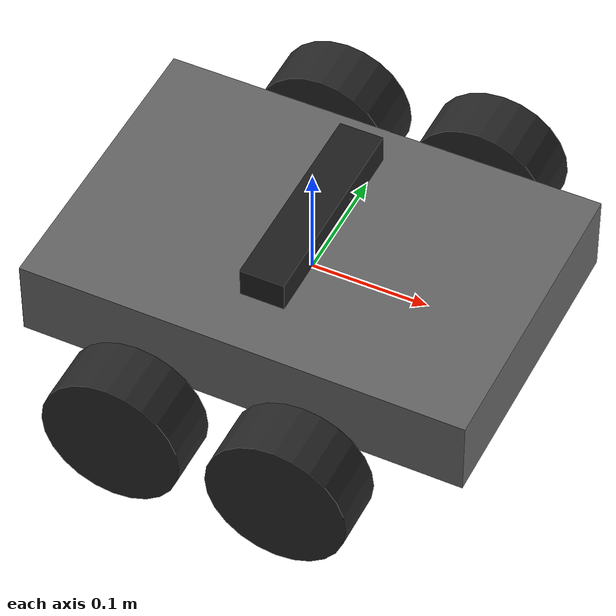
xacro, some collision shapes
<?xml version="1.0"?>
<robot name="kabuto" xmlns:xacro="http://www.ros.org/wiki/xacro">

  <xacro:include filename="$(find hotwheels_description)/urdf/xtion_camera.xacro" />
  <xacro:include filename="$(find hotwheels_description)/gazebo/gazebo.urdf.xacro"/>
  <xacro:property name="PI" value="3.1415926535897931" />
  <xacro:property name="wheelbase" value="0.142" />
  <xacro:property name="track" value="0.37559" /> <!-- TODO FIX track value -->
  <xacro:property name="wheel_vertical_offset" value="-0.03" />
  <xacro:property name="wheel_radius" value="0.06" />
  <xacro:property name="wheel_lenght" value="0.05" />

  <material name="dark_grey"><color rgba="0.2 0.2 0.2 1.0" /></material>
  <material name="light_grey"><color rgba="0.4 0.4 0.4 1.0" /></material>
  <material name="yellow"><color rgba="0.8 0.8 0.0 1.0" /></material>
  <material name="black"><color rgba="0.15 0.15 0.15 1.0" /></material>

  <link name="base_link"></link>

  <link name="chassis_link">
    <visual>
      <geometry>
        <box size=".383 .264 0.068"/>
      </geometry>
       <material name="light_grey">
    </material>
    </visual>
    <collision>
        <geometry>
        <box size=".383 .264 0.068"/>
      </geometry>
    </collision>
    <inertial>
      <!-- Center of mass -->
      <origin xyz="0.012  0.002 0.067" rpy="0 0 0"/>
      <mass value="6.523"/>
      <!-- Moments of inertia: ( chassis without wheels ) -->
      <inertia
        ixx="0.3136" ixy="-0.0008" ixz="0.0164"
        iyy="0.3922" iyz="-0.0009"
        izz="0.4485"/>
      </inertial>
  </link>

  <xtion_camera name="xtion_head_camera" parent="chassis_link">
    <origin xyz="0 0 0.026" rpy="0 0 0"/>
  </xtion_camera>

  <joint name="base_link_joint" type="fixed">
    <origin xyz="0 0 0" rpy="0 0 0" />
    <parent link="base_link"/>
    <child link="chassis_link" />
  </joint>

  <xacro:macro name="wheel" params="prefix *joint_pose">

     <link name="${prefix}_wheel_link">
    <inertial>
        <origin xyz="0 0 0" rpy="0 0 0"/>
        <mass value="0.477"/>
        <inertia
          ixx="0.0013" ixy="0" ixz="0"
          iyy="0.0024" iyz="0"
          izz="0.0013"/>
      </inertial>
     <visual>
        <origin xyz="0 0 0" rpy="${PI/2} 0 0"/>
      <geometry>
        <cylinder length="${wheel_lenght}" radius="${wheel_radius}"/>
      </geometry>
      <material name="black" />
    </visual>
    <collision>
        <origin xyz="0 0 0" rpy="${PI/2} 0 0"/>
        <geometry>
          <cylinder length="${wheel_lenght}" radius="${wheel_radius}"/>
        </geometry>
      </collision>
    </link>

    <joint name="${prefix}_wheel_joint" type="continuous">
      <parent link="chassis_link"/>
      <child link="${prefix}_wheel_link" />
      <xacro:insert_block name="joint_pose" />
      <axis xyz="0 1 0" />
    </joint>
    <transmission name="${prefix}_wheel_trans">
      <type>transmission_interface/SimpleTransmission</type>
      <actuator name="${prefix}_wheel_motor" >
        <hardwareInterface>VelocityJointInterface</hardwareInterface>
        <mechanicalReduction>1.0</mechanicalReduction>
      </actuator>
      <joint name="${prefix}_wheel_joint">

       <hardwareInterface>VelocityJointInterface</hardwareInterface>
      </joint>
    </transmission>
    <gazebo reference="${prefix}_wheel_link">
      <material>Gazebo/DarkGrey</material>
    </gazebo>
  </xacro:macro>

  <xacro:wheel prefix="front_left">
    <origin xyz="${wheelbase/2} ${track/2} ${wheel_vertical_offset}" rpy="0 0 0" />
  </xacro:wheel>
  <xacro:wheel prefix="front_right">
    <origin xyz="${wheelbase/2} ${-track/2} ${wheel_vertical_offset}" rpy="0 0 0" />
  </xacro:wheel>
  <xacro:wheel prefix="rear_left">
    <origin xyz="${-wheelbase/2} ${track/2} ${wheel_vertical_offset}" rpy="0 0 0" />
  </xacro:wheel>
  <xacro:wheel prefix="rear_right">
    <origin xyz="${-wheelbase/2} ${-track/2} ${wheel_vertical_offset}" rpy="0 0 0" />
  </xacro:wheel>

</robot>

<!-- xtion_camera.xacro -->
<robot>

  <macro name="xtion_camera" params="name parent *origin">
    <joint name="${name}_frame_joint" type="fixed">
      <insert_block name="origin" />
      <parent link="${parent}"/>
      <child link="${name}_frame"/>
    </joint>
    <link name="${name}_frame">
      <visual>
        <origin xyz="0 0 0" rpy="0 0 -1.57" />
        <geometry>
          <mesh filename="package://hotwheels_description/meshes/xtion.stl" scale="0.001 0.001 0.001"/>
        </geometry>
        <material name="Black" />
      </visual>
      <collision>
        <origin xyz="0 0 0.032075" rpy="0 0 0" />
        <geometry>
          <box size="0.0381 0.1793875 0.0254"/>
        </geometry>
      </collision>
    </link>

    <!-- ir sensor physical attachment -->
    <joint name="${name}_ir_joint" type="fixed">
      <origin xyz="0.01905 -0.0269875 0.032075" rpy="0 0 0"/>
      <parent link="${name}_frame"/>
      <child link="${name}_ir_link"/>
    </joint>
    <link name="${name}_ir_link">
      <visual>
        <origin xyz="0.0 0.0 0" rpy="0 0 0"/>
        <geometry>
          <sphere radius="0.0005"/>
        </geometry>
      </visual>
    </link>

    <!-- ir sensor frame -->
    <joint name="${name}_ir_optical_frame_joint" type="fixed">
      <origin xyz="0 0 0" rpy="-1.57 0.0 -1.57" />
      <parent link="${name}_ir_link"/>
      <child link="${name}_ir_optical_frame"/>
    </joint>
    <link name="${name}_ir_optical_frame"/>

    <!-- rgb sensor physical attachment -->
    <joint name="${name}_rgb_joint" type="fixed">
      <origin xyz="0 0.0552875 0" rpy="0 -0.08 0"/>
      <parent link="${name}_ir_link"/>
      <child link="${name}_rgb_link"/>
    </joint>
    <link name="${name}_rgb_link">
      <visual>
        <origin xyz="0.0 0.0 0" rpy="0 0 0"/>
        <geometry>
          <sphere radius="0.0005"/>
        </geometry>
      </visual>
    </link>

    <!-- rgb sensor frame -->
    <joint name="${name}_rgb_optical_frame_joint" type="fixed">
      <origin xyz="0 0 0" rpy="-1.57 0.0 -1.57" />
      <parent link="${name}_rgb_link"/>
      <child link="${name}_rgb_optical_frame"/>
    </joint>
    <link name="${name}_rgb_optical_frame"/>

  </macro>

</robot>
